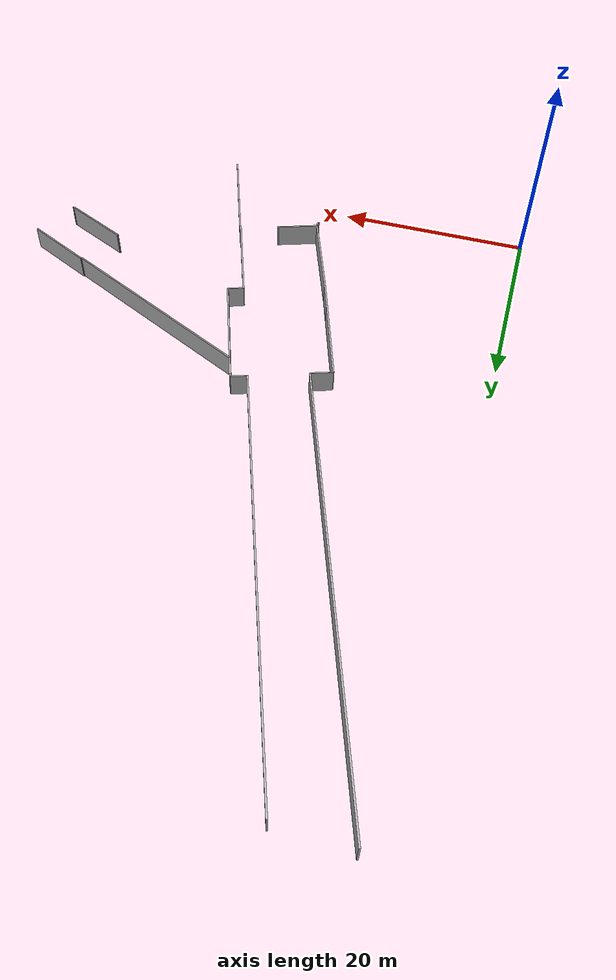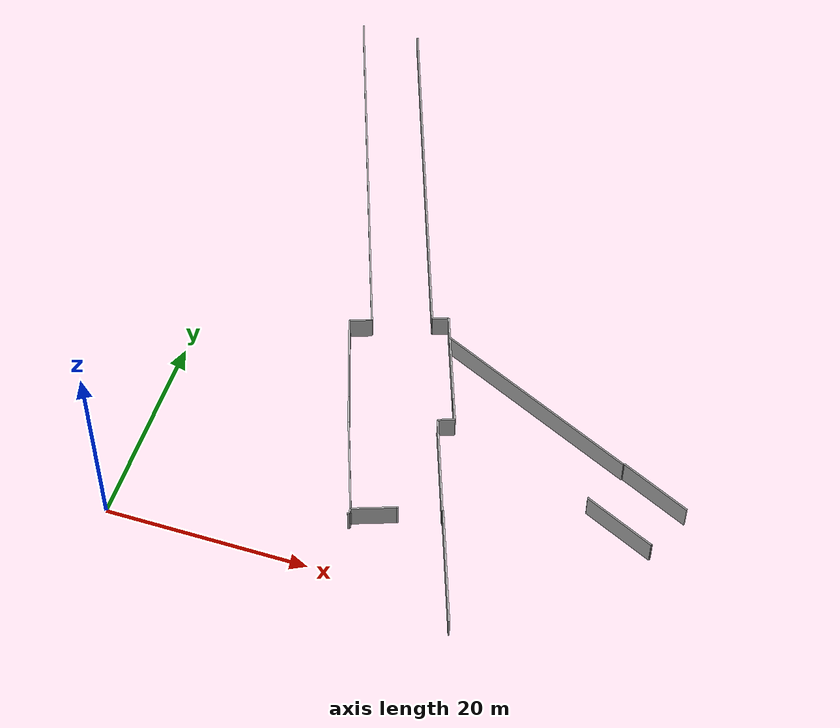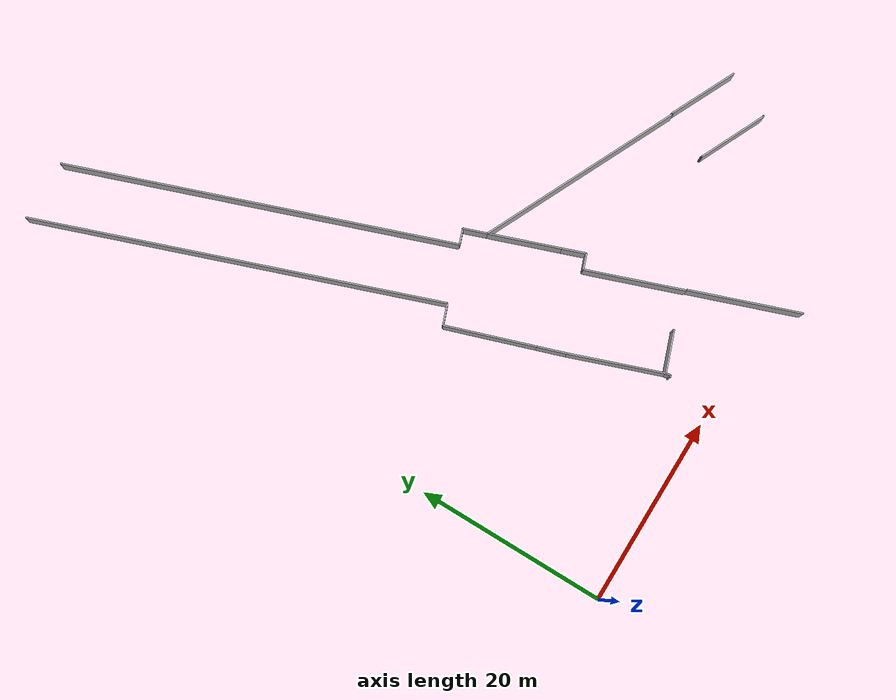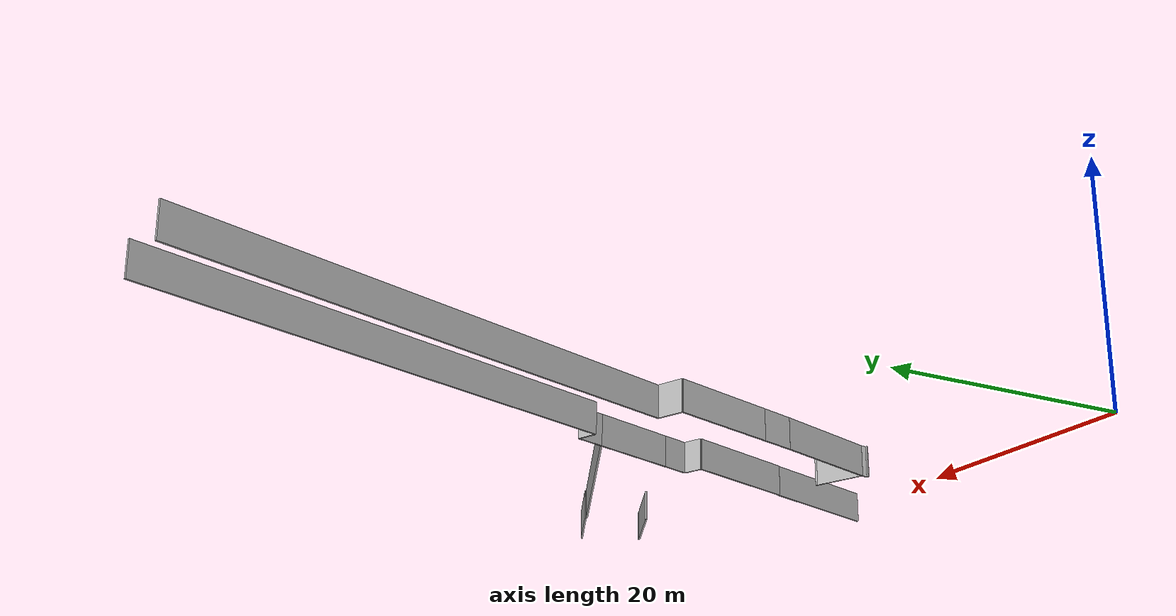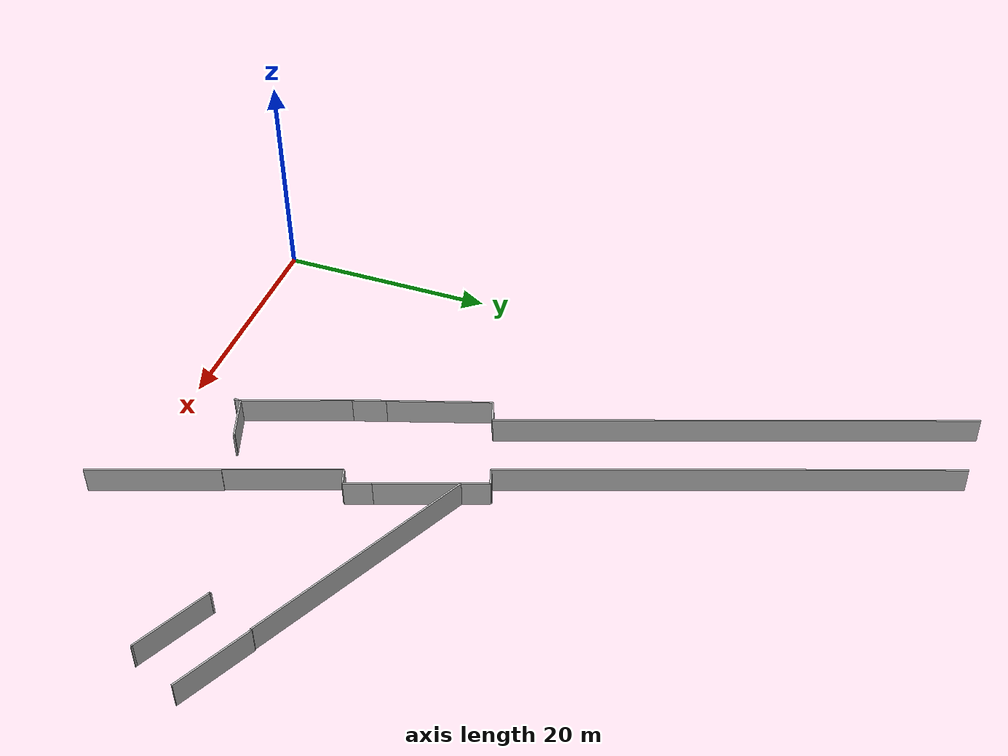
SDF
<?xml version="1.0" ?>
<sdf version="1.6">
  <model name="sps_0417">
    <pose frame="">0 0 0 0 -0 0</pose>
    <static>1</static>
    <self_collide>0</self_collide>
    <allow_auto_disable>0</allow_auto_disable>
    <link name="Wall86">
      <kinematic>0</kinematic>
      <gravity>1</gravity>
      <self_collide>0</self_collide>
      <collision name="collision">
        <geometry>
          <box>
            <size>0.0706437 0.15 2.5</size>
          </box>
        </geometry>
        <pose frame="">0 0 0 0 -0 0</pose>
      </collision>
      <visual name="visual">
        <geometry>
          <box>
            <size>0.0706437 0.15 2.5</size>
          </box>
        </geometry>
        <pose frame="">0 0 0 0 -0 0</pose>
        <cast_shadows>1</cast_shadows>
        <transparency>0.0</transparency>
      </visual>
      <pose frame="">30.4767 8.11717 1.25 0 -0 0.355636</pose>
    </link>
    <link name="Wall87">
      <kinematic>0</kinematic>
      <gravity>1</gravity>
      <self_collide>0</self_collide>
      <collision name="collision">
        <geometry>
          <box>
            <size>11.7364 0.15 2.5</size>
          </box>
        </geometry>
        <pose frame="">0 0 0 0 -0 0</pose>
      </collision>
      <visual name="visual">
        <geometry>
          <box>
            <size>11.7364 0.15 2.5</size>
          </box>
        </geometry>
        <pose frame="">0 0 0 0 -0 0</pose>
        <cast_shadows>1</cast_shadows>
        <transparency>0.0</transparency>
      </visual>
      <pose frame="">32.4896 2.60534 1.25 0 0 -1.22667</pose>
    </link>
    <link name="Wall170">
      <kinematic>0</kinematic>
      <gravity>1</gravity>
      <self_collide>0</self_collide>
      <collision name="collision">
        <geometry>
          <box>
            <size>1.64998 0.15 2.5</size>
          </box>
        </geometry>
        <pose frame="">0 0 0 0 -0 0</pose>
      </collision>
      <visual name="visual">
        <geometry>
          <box>
            <size>1.64998 0.15 2.5</size>
          </box>
        </geometry>
        <pose frame="">0 0 0 0 -0 0</pose>
        <cast_shadows>1</cast_shadows>
        <transparency>0.0</transparency>
      </visual>
      <pose frame="">23.4925 29.9408 1.25 0 -0 0.343838</pose>
    </link>
    <link name="Wall171">
      <kinematic>0</kinematic>
      <gravity>1</gravity>
      <self_collide>0</self_collide>
      <collision name="collision">
        <geometry>
          <box>
            <size>2.49963 0.15 2.5</size>
          </box>
        </geometry>
        <pose frame="">0 0 0 0 -0 0</pose>
      </collision>
      <visual name="visual">
        <geometry>
          <box>
            <size>2.49963 0.15 2.5</size>
          </box>
        </geometry>
        <pose frame="">0 0 0 0 -0 0</pose>
        <cast_shadows>1</cast_shadows>
        <transparency>0.0</transparency>
      </visual>
      <pose frame="">24.6911 29.0424 1.25 0 0 -1.22654</pose>
    </link>
    <link name="Wall263">
      <kinematic>0</kinematic>
      <gravity>1</gravity>
      <self_collide>0</self_collide>
      <collision name="collision">
        <geometry>
          <box>
            <size>2.24921 0.15 2.5</size>
          </box>
        </geometry>
        <pose frame="">0 0 0 0 -0 0</pose>
      </collision>
      <visual name="visual">
        <geometry>
          <box>
            <size>2.24921 0.15 2.5</size>
          </box>
        </geometry>
        <pose frame="">0 0 0 0 -0 0</pose>
        <cast_shadows>1</cast_shadows>
        <transparency>0.0</transparency>
      </visual>
      <pose frame="">16.0085 27.2574 1.25 0 -0 0.34457</pose>
    </link>
    <link name="Wall264">
      <kinematic>0</kinematic>
      <gravity>1</gravity>
      <self_collide>0</self_collide>
      <collision name="collision">
        <geometry>
          <box>
            <size>42.7635 0.15 2.5</size>
          </box>
        </geometry>
        <pose frame="">0 0 0 0 -0 0</pose>
      </collision>
      <visual name="visual">
        <geometry>
          <box>
            <size>42.7635 0.15 2.5</size>
          </box>
        </geometry>
        <pose frame="">0 0 0 0 -0 0</pose>
        <cast_shadows>1</cast_shadows>
        <transparency>0.0</transparency>
      </visual>
      <pose frame="">9.85269 47.7652 1.25 0 -0 1.91496</pose>
    </link>
    <link name="Wall267">
      <kinematic>0</kinematic>
      <gravity>1</gravity>
      <self_collide>0</self_collide>
      <collision name="collision">
        <geometry>
          <box>
            <size>40.6042 0.15 2.5</size>
          </box>
        </geometry>
        <pose frame="">0 0 0 0 -0 0</pose>
      </collision>
      <visual name="visual">
        <geometry>
          <box>
            <size>40.6042 0.15 2.5</size>
          </box>
        </geometry>
        <pose frame="">0 0 0 0 -0 0</pose>
        <cast_shadows>1</cast_shadows>
        <transparency>0.0</transparency>
      </visual>
      <pose frame="">15.8759 48.7779 1.25 0 0 -1.22716</pose>
    </link>
    <link name="Wall268">
      <kinematic>0</kinematic>
      <gravity>1</gravity>
      <self_collide>0</self_collide>
      <collision name="collision">
        <geometry>
          <box>
            <size>1.65028 0.15 2.5</size>
          </box>
        </geometry>
        <pose frame="">0 0 0 0 -0 0</pose>
      </collision>
      <visual name="visual">
        <geometry>
          <box>
            <size>1.65028 0.15 2.5</size>
          </box>
        </geometry>
        <pose frame="">0 0 0 0 -0 0</pose>
        <cast_shadows>1</cast_shadows>
        <transparency>0.0</transparency>
      </visual>
      <pose frame="">27.7107 18.1739 1.25 0 0 -2.79692</pose>
    </link>
    <link name="Wall327">
      <kinematic>0</kinematic>
      <gravity>1</gravity>
      <self_collide>0</self_collide>
      <collision name="collision">
        <geometry>
          <box>
            <size>0.00213967 0.15 2.5</size>
          </box>
        </geometry>
        <pose frame="">0 0 0 0 -0 0</pose>
      </collision>
      <visual name="visual">
        <geometry>
          <box>
            <size>0.00213967 0.15 2.5</size>
          </box>
        </geometry>
        <pose frame="">0 0 0 0 -0 0</pose>
        <cast_shadows>1</cast_shadows>
        <transparency>0.0</transparency>
      </visual>
      <pose frame="">26.9344 17.8941 1.25 0 0 -1.22659</pose>
    </link>
    <link name="Wall328">
      <kinematic>0</kinematic>
      <gravity>1</gravity>
      <self_collide>0</self_collide>
      <collision name="collision">
        <geometry>
          <box>
            <size>10.3981 0.15 2.5</size>
          </box>
        </geometry>
        <pose frame="">0 0 0 0 -0 0</pose>
      </collision>
      <visual name="visual">
        <geometry>
          <box>
            <size>10.3981 0.15 2.5</size>
          </box>
        </geometry>
        <pose frame="">0 0 0 0 -0 0</pose>
        <cast_shadows>1</cast_shadows>
        <transparency>0.0</transparency>
      </visual>
      <pose frame="">28.6892 12.999 1.25 0 0 -1.22659</pose>
    </link>
    <link name="Wall491">
      <kinematic>0</kinematic>
      <gravity>1</gravity>
      <self_collide>0</self_collide>
      <collision name="collision">
        <geometry>
          <box>
            <size>9.47192 0.15 2.5</size>
          </box>
        </geometry>
        <pose frame="">0 0 0 0 -0 0</pose>
      </collision>
      <visual name="visual">
        <geometry>
          <box>
            <size>9.47192 0.15 2.5</size>
          </box>
        </geometry>
        <pose frame="">0 0 0 0 -0 0</pose>
        <cast_shadows>1</cast_shadows>
        <transparency>0.0</transparency>
      </visual>
      <pose frame="">16.4498 22.3853 1.25 0 0 -1.24857</pose>
    </link>
    <link name="Wall492">
      <kinematic>0</kinematic>
      <gravity>1</gravity>
      <self_collide>0</self_collide>
      <collision name="collision">
        <geometry>
          <box>
            <size>3.03054 0.15 2.5</size>
          </box>
        </geometry>
        <pose frame="">0 0 0 0 -0 0</pose>
      </collision>
      <visual name="visual">
        <geometry>
          <box>
            <size>3.03054 0.15 2.5</size>
          </box>
        </geometry>
        <pose frame="">0 0 0 0 -0 0</pose>
        <cast_shadows>1</cast_shadows>
        <transparency>0.0</transparency>
      </visual>
      <pose frame="">18.4294 16.4558 1.25 0 0 -1.24857</pose>
    </link>
    <link name="Wall493">
      <kinematic>0</kinematic>
      <gravity>1</gravity>
      <self_collide>0</self_collide>
      <collision name="collision">
        <geometry>
          <box>
            <size>0.509222 0.15 2.5</size>
          </box>
        </geometry>
        <pose frame="">0 0 0 0 -0 0</pose>
      </collision>
      <visual name="visual">
        <geometry>
          <box>
            <size>0.509222 0.15 2.5</size>
          </box>
        </geometry>
        <pose frame="">0 0 0 0 -0 0</pose>
        <cast_shadows>1</cast_shadows>
        <transparency>0.0</transparency>
      </visual>
      <pose frame="">22.3109 5.45479 1.25 0 -0 1.71707</pose>
    </link>
    <link name="Wall494">
      <kinematic>0</kinematic>
      <gravity>1</gravity>
      <self_collide>0</self_collide>
      <collision name="collision">
        <geometry>
          <box>
            <size>2.49963 0.15 2.5</size>
          </box>
        </geometry>
        <pose frame="">0 0 0 0 -0 0</pose>
      </collision>
      <visual name="visual">
        <geometry>
          <box>
            <size>2.49963 0.15 2.5</size>
          </box>
        </geometry>
        <pose frame="">0 0 0 0 -0 0</pose>
        <cast_shadows>1</cast_shadows>
        <transparency>0.0</transparency>
      </visual>
      <pose frame="">28.0655 19.6292 1.25 0 0 -1.22654</pose>
    </link>
    <link name="Wall592">
      <kinematic>0</kinematic>
      <gravity>1</gravity>
      <self_collide>0</self_collide>
      <collision name="collision">
        <geometry>
          <box>
            <size>9.90103 0.15 2.5</size>
          </box>
        </geometry>
        <pose frame="">0 0 0 0 -0 0</pose>
      </collision>
      <visual name="visual">
        <geometry>
          <box>
            <size>9.90103 0.15 2.5</size>
          </box>
        </geometry>
        <pose frame="">0 0 0 0 -0 0</pose>
        <cast_shadows>1</cast_shadows>
        <transparency>0.0</transparency>
      </visual>
      <pose frame="">20.5915 10.3626 1.25 0 0 -1.22407</pose>
    </link>
    <link name="Wall593">
      <kinematic>0</kinematic>
      <gravity>1</gravity>
      <self_collide>0</self_collide>
      <collision name="collision">
        <geometry>
          <box>
            <size>0.19938 0.15 2.5</size>
          </box>
        </geometry>
        <pose frame="">0 0 0 0 -0 0</pose>
      </collision>
      <visual name="visual">
        <geometry>
          <box>
            <size>0.19938 0.15 2.5</size>
          </box>
        </geometry>
        <pose frame="">0 0 0 0 -0 0</pose>
        <cast_shadows>1</cast_shadows>
        <transparency>0.0</transparency>
      </visual>
      <pose frame="">22.2543 5.16908 1.25 0 -0 0.346051</pose>
    </link>
    <link name="Wall594">
      <kinematic>0</kinematic>
      <gravity>1</gravity>
      <self_collide>0</self_collide>
      <collision name="collision">
        <geometry>
          <box>
            <size>0.180181 0.15 2.5</size>
          </box>
        </geometry>
        <pose frame="">0 0 0 0 -0 0</pose>
      </collision>
      <visual name="visual">
        <geometry>
          <box>
            <size>0.180181 0.15 2.5</size>
          </box>
        </geometry>
        <pose frame="">0 0 0 0 -0 0</pose>
        <cast_shadows>1</cast_shadows>
        <transparency>0.0</transparency>
      </visual>
      <pose frame="">26.3592 7.17232 1.25 0 0 -2.79745</pose>
    </link>
    <link name="Wall1392">
      <kinematic>0</kinematic>
      <gravity>1</gravity>
      <self_collide>0</self_collide>
      <collision name="collision">
        <geometry>
          <box>
            <size>7.50012 0.15 2.5</size>
          </box>
        </geometry>
        <pose frame="">0 0 0 0 -0 0</pose>
      </collision>
      <visual name="visual">
        <geometry>
          <box>
            <size>7.50012 0.15 2.5</size>
          </box>
        </geometry>
        <pose frame="">0 0 0 0 -0 0</pose>
        <cast_shadows>1</cast_shadows>
        <transparency>0.0</transparency>
      </visual>
      <pose frame="">26.3783 24.3358 1.25 0 -0 1.91498</pose>
    </link>
    <link name="Wall1393">
      <kinematic>0</kinematic>
      <gravity>1</gravity>
      <self_collide>0</self_collide>
      <collision name="collision">
        <geometry>
          <box>
            <size>22.1706 0.15 2.5</size>
          </box>
        </geometry>
        <pose frame="">0 0 0 0 -0 0</pose>
      </collision>
      <visual name="visual">
        <geometry>
          <box>
            <size>22.1706 0.15 2.5</size>
          </box>
        </geometry>
        <pose frame="">0 0 0 0 -0 0</pose>
        <cast_shadows>1</cast_shadows>
        <transparency>0.0</transparency>
      </visual>
      <pose frame="">35.1147 23.086 1.25 0 0 -0.445816</pose>
    </link>
    <link name="Wall1394">
      <kinematic>0</kinematic>
      <gravity>1</gravity>
      <self_collide>0</self_collide>
      <collision name="collision">
        <geometry>
          <box>
            <size>0.100339 0.15 2.5</size>
          </box>
        </geometry>
        <pose frame="">0 0 0 0 -0 0</pose>
      </collision>
      <visual name="visual">
        <geometry>
          <box>
            <size>0.100339 0.15 2.5</size>
          </box>
        </geometry>
        <pose frame="">0 0 0 0 -0 0</pose>
        <cast_shadows>1</cast_shadows>
        <transparency>0.0</transparency>
      </visual>
      <pose frame="">45.1379 18.3515 1.25 0 -0 1.13027</pose>
    </link>
    <link name="Wall1395">
      <kinematic>0</kinematic>
      <gravity>1</gravity>
      <self_collide>0</self_collide>
      <collision name="collision">
        <geometry>
          <box>
            <size>7.50014 0.15 2.5</size>
          </box>
        </geometry>
        <pose frame="">0 0 0 0 -0 0</pose>
      </collision>
      <visual name="visual">
        <geometry>
          <box>
            <size>7.50014 0.15 2.5</size>
          </box>
        </geometry>
        <pose frame="">0 0 0 0 -0 0</pose>
        <cast_shadows>1</cast_shadows>
        <transparency>0.0</transparency>
      </visual>
      <pose frame="">48.5395 16.7729 1.25 0 0 -0.447881</pose>
    </link>
    <link name="Wall1399">
      <kinematic>0</kinematic>
      <gravity>1</gravity>
      <self_collide>0</self_collide>
      <collision name="collision">
        <geometry>
          <box>
            <size>0.100417 0.15 2.5</size>
          </box>
        </geometry>
        <pose frame="">0 0 0 0 -0 0</pose>
      </collision>
      <visual name="visual">
        <geometry>
          <box>
            <size>0.100417 0.15 2.5</size>
          </box>
        </geometry>
        <pose frame="">0 0 0 0 -0 0</pose>
        <cast_shadows>1</cast_shadows>
        <transparency>0.0</transparency>
      </visual>
      <pose frame="">49.6986 10.4467 1.25 0 0 -2.01297</pose>
    </link>
    <link name="Wall1400">
      <kinematic>0</kinematic>
      <gravity>1</gravity>
      <self_collide>0</self_collide>
      <collision name="collision">
        <geometry>
          <box>
            <size>7.50005 0.15 2.5</size>
          </box>
        </geometry>
        <pose frame="">0 0 0 0 -0 0</pose>
      </collision>
      <visual name="visual">
        <geometry>
          <box>
            <size>7.50005 0.15 2.5</size>
          </box>
        </geometry>
        <pose frame="">0 0 0 0 -0 0</pose>
        <cast_shadows>1</cast_shadows>
        <transparency>0.0</transparency>
      </visual>
      <pose frame="">46.2863 12.0029 1.25 0 -0 2.70032</pose>
    </link>
    <link name="Wall1401">
      <kinematic>0</kinematic>
      <gravity>1</gravity>
      <self_collide>0</self_collide>
      <collision name="collision">
        <geometry>
          <box>
            <size>0.100417 0.15 2.5</size>
          </box>
        </geometry>
        <pose frame="">0 0 0 0 -0 0</pose>
      </collision>
      <visual name="visual">
        <geometry>
          <box>
            <size>0.100417 0.15 2.5</size>
          </box>
        </geometry>
        <pose frame="">0 0 0 0 -0 0</pose>
        <cast_shadows>1</cast_shadows>
        <transparency>0.0</transparency>
      </visual>
      <pose frame="">42.917 13.6499 1.25 0 -0 1.12862</pose>
    </link>
    <link name="Wall1889">
      <kinematic>0</kinematic>
      <gravity>1</gravity>
      <self_collide>0</self_collide>
      <collision name="collision">
        <geometry>
          <box>
            <size>0.19938 0.15 2.5</size>
          </box>
        </geometry>
        <pose frame="">0 0 0 0 -0 0</pose>
      </collision>
      <visual name="visual">
        <geometry>
          <box>
            <size>0.19938 0.15 2.5</size>
          </box>
        </geometry>
        <pose frame="">0 0 0 0 -0 0</pose>
        <cast_shadows>1</cast_shadows>
        <transparency>0.0</transparency>
      </visual>
      <pose frame="">22.2543 5.16908 1.25 0 -0 0.346051</pose>
    </link>
    <link name="Wall1890">
      <kinematic>0</kinematic>
      <gravity>1</gravity>
      <self_collide>0</self_collide>
      <collision name="collision">
        <geometry>
          <box>
            <size>0.509222 0.15 2.5</size>
          </box>
        </geometry>
        <pose frame="">0 0 0 0 -0 0</pose>
      </collision>
      <visual name="visual">
        <geometry>
          <box>
            <size>0.509222 0.15 2.5</size>
          </box>
        </geometry>
        <pose frame="">0 0 0 0 -0 0</pose>
        <cast_shadows>1</cast_shadows>
        <transparency>0.0</transparency>
      </visual>
      <pose frame="">22.3109 5.45479 1.25 0 -0 1.71707</pose>
    </link>
    <link name="Wall1891">
      <kinematic>0</kinematic>
      <gravity>1</gravity>
      <self_collide>0</self_collide>
      <collision name="collision">
        <geometry>
          <box>
            <size>4.25027 0.15 2.5</size>
          </box>
        </geometry>
        <pose frame="">0 0 0 0 -0 0</pose>
      </collision>
      <visual name="visual">
        <geometry>
          <box>
            <size>4.25027 0.15 2.5</size>
          </box>
        </geometry>
        <pose frame="">0 0 0 0 -0 0</pose>
        <cast_shadows>1</cast_shadows>
        <transparency>0.0</transparency>
      </visual>
      <pose frame="">24.2741 6.4243 1.25 0 -0 0.344454</pose>
    </link>
  </model>
</sdf>
